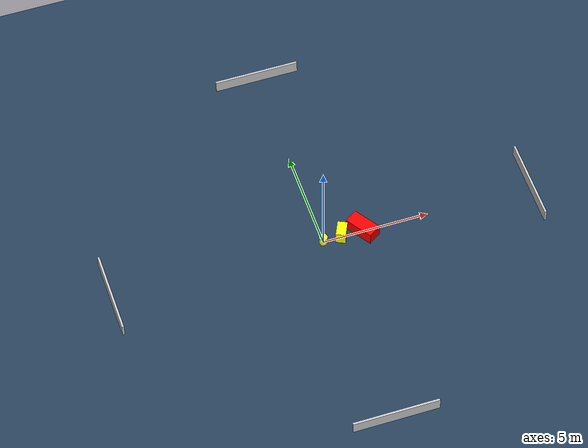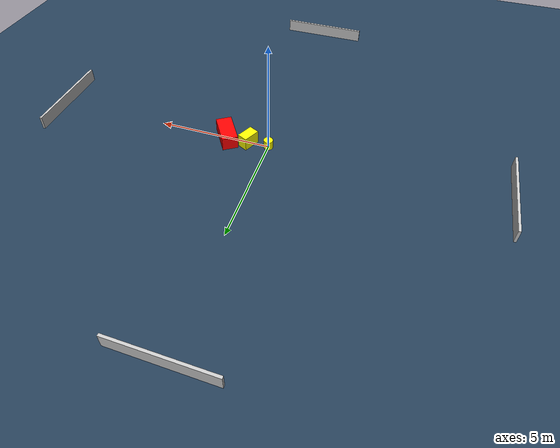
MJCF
<?xml version="1.0" ?>
<mujoco model="generated_environment">
  <option timestep="0.01" integrator="RK4" cone="elliptic"/>
  <default>
    <geom density="1"/>
  </default>
  <asset>
    <texture builtin="gradient" height="3072" name="skybox" rgb1="0.3 0.5 0.7" rgb2="0 0 0" type="skybox" width="512"/>
    <texture builtin="checker" height="300" name="groundplane" rgb1="0.2 0.3 0.4" rgb2="0.1 0.2 0.3" type="2d" width="300"/>
    <material name="groundplane" reflectance="0.2" texrepeat="5 5" texture="groundplane"/>
  </asset>
  <worldbody>
    <light dir="0 0 -1" directional="true" pos="0 0 1.5"/>
    <geom condim="3" friction="0.5 0.005 0.001" material="groundplane" name="floor" pos="0 0 0" size="0 0 0.05" type="plane"/>
    <body name="walls">
      <geom name="wall_1" condim="4" pos="-10.0 0.0 0.3" rgba="0.800000011920929 0.800000011920929 0.800000011920929 1.0" size="0.05 2.0 0.3" type="box"/>
      <geom name="wall_2" condim="4" pos="10.0 0.0 0.3" rgba="0.800000011920929 0.800000011920929 0.800000011920929 1.0" size="0.05 2.0 0.3" type="box"/>
      <geom name="wall_3" condim="4" pos="0.0 -10.0 0.3" rgba="0.800000011920929 0.800000011920929 0.800000011920929 1.0" size="2.0 0.05 0.3" type="box"/>
      <geom name="wall_4" condim="4" pos="0.0 10.0 0.3" rgba="0.800000011920929 0.800000011920929 0.800000011920929 1.0" size="2.0 0.05 0.3" type="box"/>
    </body>
    <body name="robot">
      <joint name="joint_x" type="slide" pos="0 0 0" axis="1 0 0"/>
      <joint name="joint_y" type="slide" pos="0 0 0" axis="0 1 0"/>
      <geom name="robot" type="cylinder" pos="0.0 0.0 0.2" size="0.2 0.2 0.0" mass="5.0" friction="1.0 0.005 0.0001" condim="4" rgba="1.0 1.0 0.0 1.0"/>
    </body>
    <body name="obstacle_1_movable">
      <geom name="obstacle_1_movable" condim="4" pos="0.8968725186176477 0.06558515136385479 0.3" euler="0 0 334.8065361720202" friction="0.0 0.005 0.001" rgba="1.0 1.0 0.0 1.0" size="0.22976080412577504 0.37481167857892556 0.3" type="box" mass="0.1"/>
      <joint type="free"/>
    </body>
    <body name="obstacle_2_static">
      <geom name="obstacle_2_static" condim="4" pos="1.896251515236771 0.031387815640156386 0.3" euler="0 0 303.3910216946406" friction="0.0 0.005 0.001" rgba="1.0 0.0 0.0 1.0" size="0.7011158722301056 0.3412158135940244 0.3" type="box"/>
    </body>
  </worldbody>
  <actuator>
    <motor name="actuator_x" joint="joint_x" gear="1" ctrlrange="-1 1"/>
    <motor name="actuator_y" joint="joint_y" gear="1" ctrlrange="-1 1"/>
  </actuator>
</mujoco>
